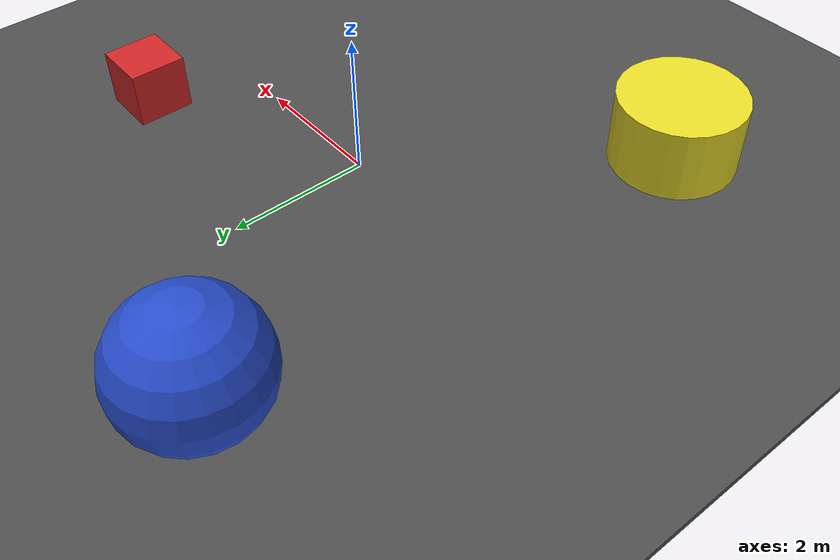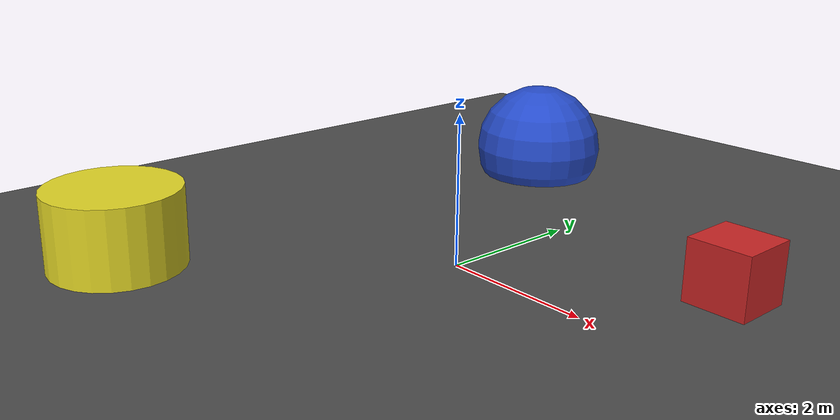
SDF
<sdf version="1.6">
 <world name="default">
  <model name="asphalt_plane">
   <static>1</static>
   <link name="link">
    <collision name="collision"><geometry><box><size>50 50 0.1</size></box></geometry></collision>
    <visual name="visual">
     <cast_shadows>0</cast_shadows>
     <geometry><box><size>50 50 0.1</size></box></geometry>
     <material>
      <script>
       <uri>model://asphalt_plane/materials/scripts</uri>
       <uri>model://asphalt_plane/materials/textures</uri>
       <name>vrc/asphalt</name>
      </script>
     </material>
    </visual>
   </link>
  </model>
  <model name="ground_plane">
   <static>1</static>
   <link name="link">
    <collision name="collision">
     <geometry><plane><normal>0 0 1</normal><size>100 100</size></plane></geometry>
     <surface><friction><ode><mu>100</mu><mu2>50</mu2></ode></friction></surface>
    </collision>
    <visual name="visual">
     <cast_shadows>0</cast_shadows>
     <geometry><plane><normal>0 0 1</normal><size>100 100</size></plane></geometry>
     <material>
      <script><uri>file://media/materials/scripts/gazebo.material</uri><name>Gazebo/Green</name></script>
     </material>
    </visual>
   </link>
  </model>
  <model name="unit_box">
   <pose>3.0 1.5 0.5 0 -0 0</pose>
   <link name="link">
    <inertial>
     <mass>1</mass>
     <inertia>
      <ixx>0.166667</ixx>
      <ixy>0</ixy>
      <ixz>0</ixz>
      <iyy>0.166667</iyy>
      <iyz>0</iyz>
      <izz>0.166667</izz>
     </inertia>
    </inertial>
    <collision name="collision"><geometry><box><size>0.8 0.8 0.8</size></box></geometry></collision>
    <visual name="visual">
     <geometry><box><size>0.8 0.8 0.8</size></box></geometry>
     <material>
      <script><name>Gazebo/Red</name><uri>file://media/materials/scripts/gazebo.material</uri></script>
     </material>
    </visual>
   </link>
  </model>
  <model name="unit_cylinder">
   <pose>-2.7 -3.4 0.5 0 -0 0</pose>
   <link name="link">
    <inertial>
     <mass>1</mass>
     <inertia><ixx>0.145833</ixx><ixy>0</ixy><ixz>0</ixz><iyy>0.145833</iyy><iyz>0</iyz><izz>0.125</izz></inertia>
    </inertial>
    <collision name="collision">
     <geometry><cylinder><radius>0.9</radius><length>1.2</length></cylinder></geometry>
    </collision>
    <visual name="visual">
     <geometry><cylinder><radius>0.9</radius><length>1.2</length></cylinder></geometry>
     <material>
      <script><name>Gazebo/Yellow</name><uri>file://media/materials/scripts/gazebo.material</uri></script>
     </material>
    </visual>
   </link>
  </model>
  <model name="unit_sphere">
   <pose>-2.0 3.8 0.5 0 -0 0</pose>
   <link name="link">
    <inertial>
     <mass>1</mass>
     <inertia><ixx>0.1</ixx><ixy>0</ixy><ixz>0</ixz><iyy>0.1</iyy><iyz>0</iyz><izz>0.1</izz></inertia>
    </inertial>
    <collision name="collision"><geometry><sphere><radius>1.0</radius></sphere></geometry></collision>
    <visual name="visual">
     <geometry><sphere><radius>1.0</radius></sphere></geometry>
     <material>
      <script><name>Gazebo/Blue</name><uri>file://media/materials/scripts/gazebo.material</uri></script>
     </material>
    </visual>
   </link>
  </model>
  <light name="sun" type="directional">
   <pose>0 0 10 0 -0 0</pose>
   <diffuse>0.8 0.8 0.8 1</diffuse>
   <specular>0.2 0.2 0.2 1</specular>
   <attenuation>
    <range>1000</range>
    <constant>0.9</constant>
    <linear>0.01</linear>
    <quadratic>0.001</quadratic>
   </attenuation>
   <direction>-0.5 0.1 -0.9</direction>
  </light>
 </world>
</sdf>
